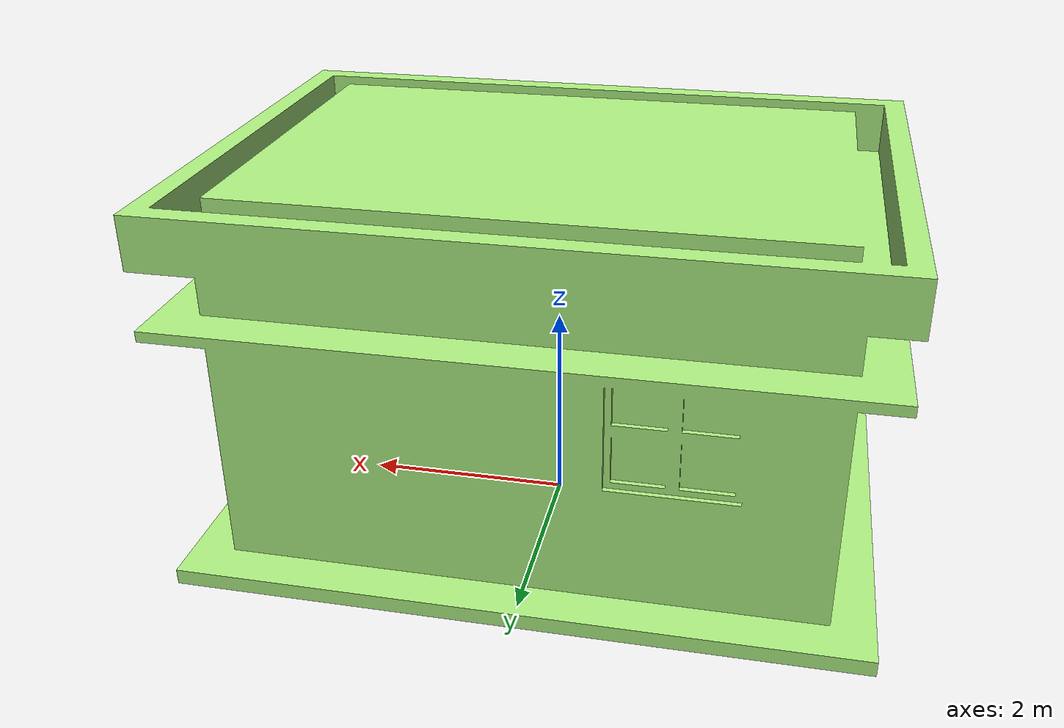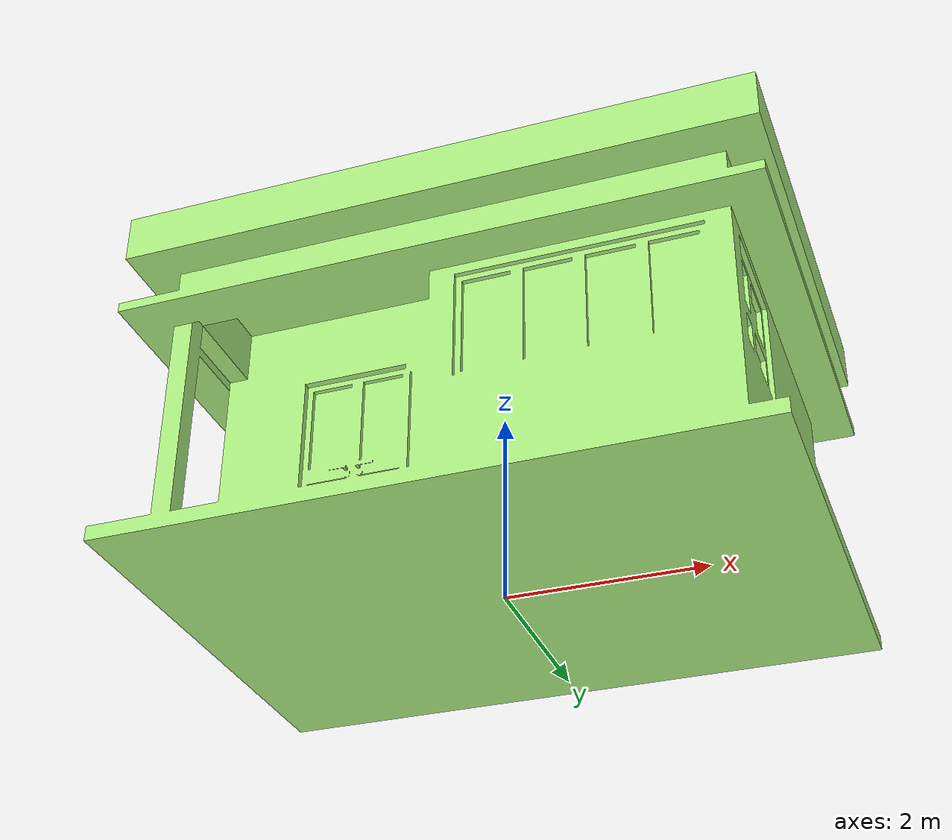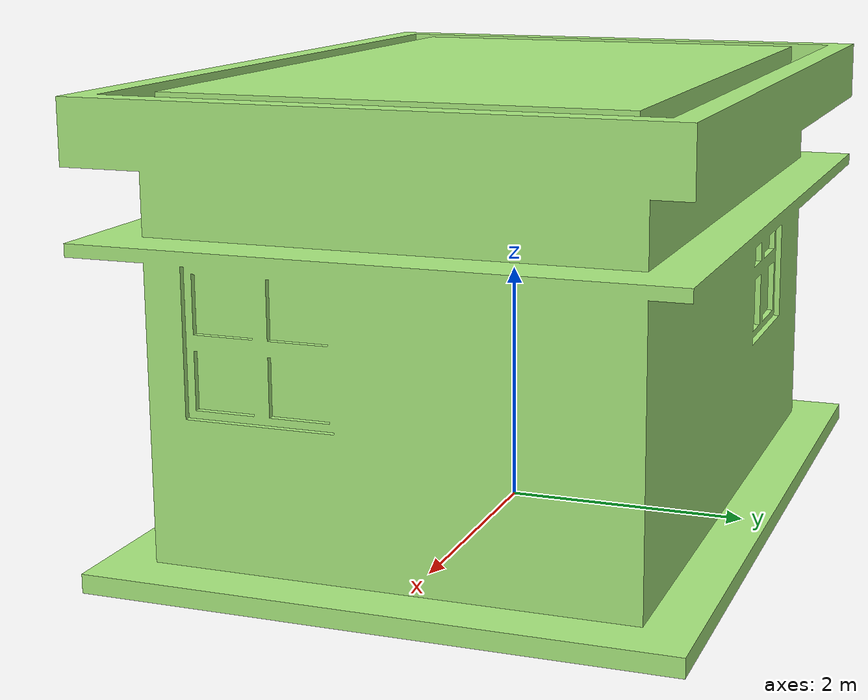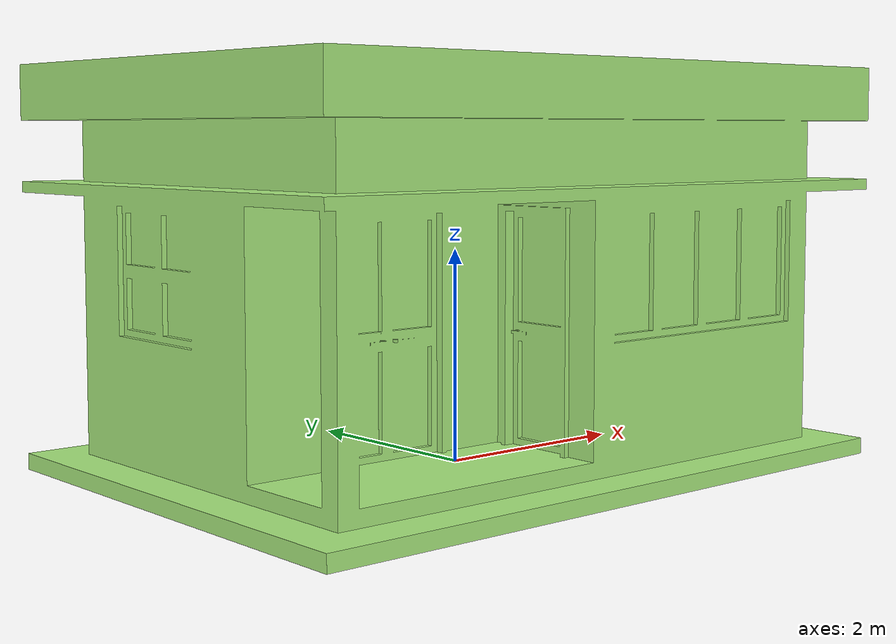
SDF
<?xml version="1.0" ?>
<sdf version="1.8">
  <model name="Security_Booth">
    <static>true</static>
    <link name="link">
      <collision name="collision">
        <geometry>
          <mesh>
            <uri>model://Security_Booth/Meshes/Security_Booth.stl</uri>
            <scale>0.001 0.001 0.001</scale>
          </mesh>
        </geometry>
      </collision>

      <visual name="visual">
        <geometry>
          <mesh>
            <uri>model://Security_Booth/Meshes/Security_Booth.stl</uri>
            <scale>0.001 0.001 0.001</scale>
          </mesh>
        </geometry>
        <material>
          <diffuse>0.6745 0.9333 0.5019 1</diffuse>
        </material>
      </visual>
    </link>
  </model>
</sdf>
